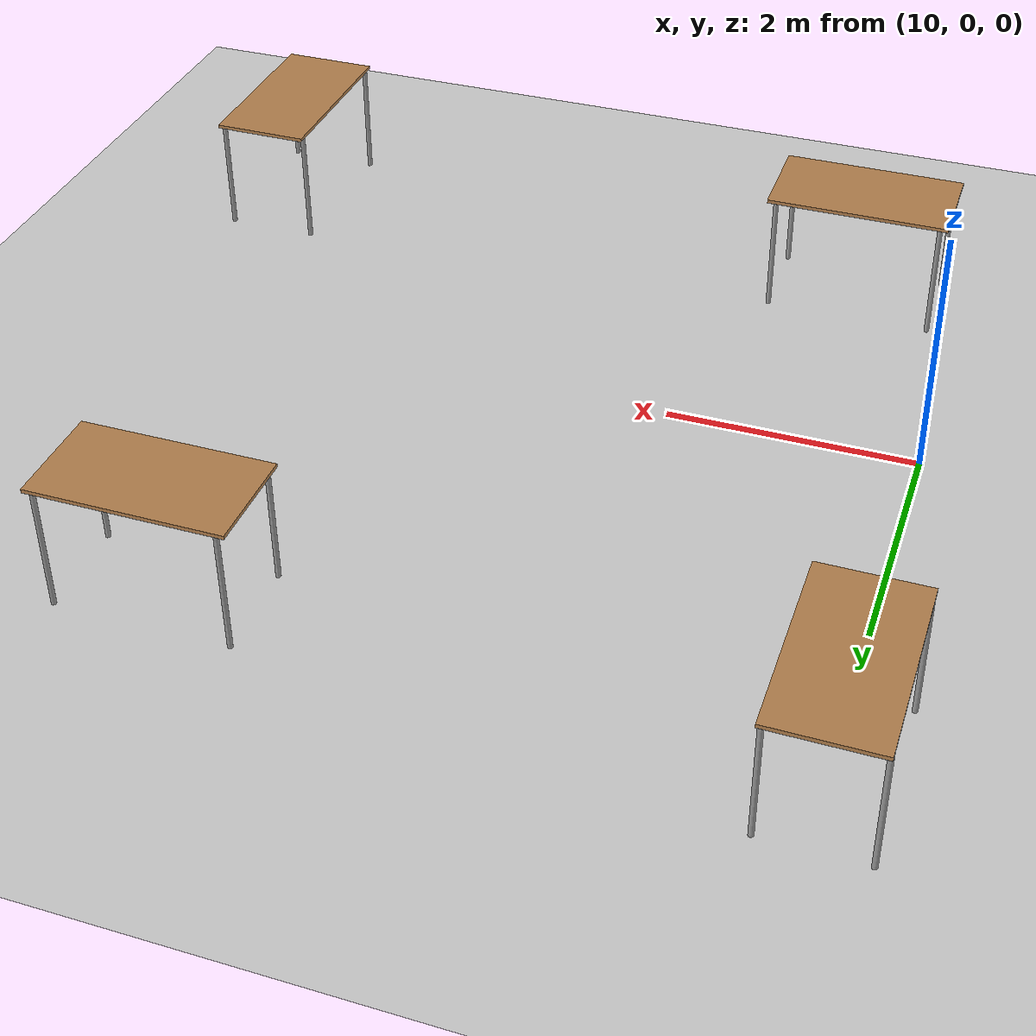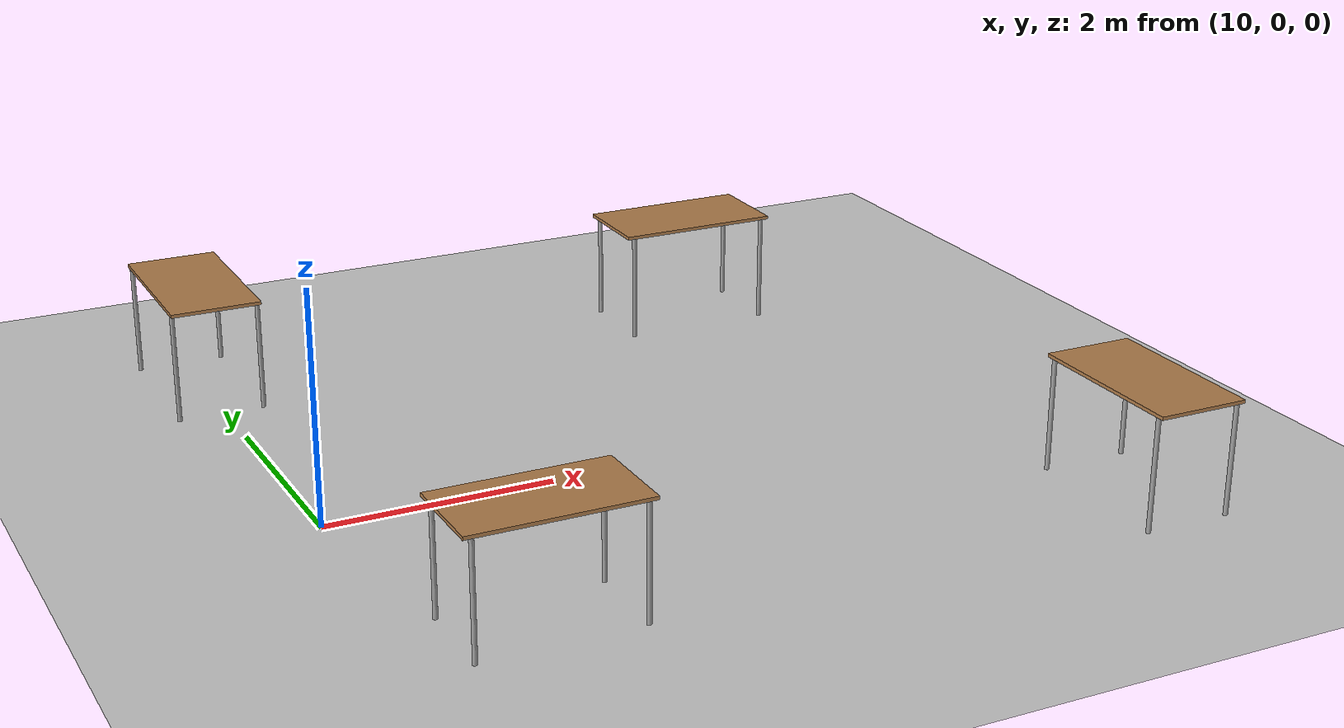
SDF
<sdf version="1.6">
 <world name="default">
  <model name="ground_plane">
   <static>1</static>
   <link name="link">
    <collision name="collision">
     <geometry><plane><normal>0 0 1</normal><size>100 100</size></plane></geometry>
     <surface>
      <contact><collide_bitmask>65535</collide_bitmask></contact>
      <friction><ode><mu>100</mu><mu2>50</mu2></ode></friction>
     </surface>
    </collision>
    <visual name="visual">
     <cast_shadows>0</cast_shadows>
     <geometry><plane><normal>0 0 1</normal><size>100 100</size></plane></geometry>
     <material>
      <script><uri>file://media/materials/scripts/gazebo.material</uri><name>Gazebo/Grey</name></script>
     </material>
    </visual>
   </link>
  </model>
  <model name="table_2">
   <static>1</static>
   <link name="link">
    <collision name="surface">
     <pose>0 0 1 0 -0 0</pose>
     <geometry><box><size>1.5 0.8 0.03</size></box></geometry>
     <surface><friction><ode><mu>0.6</mu><mu2>0.6</mu2></ode></friction></surface>
    </collision>
    <visual name="visual1">
     <pose>0 0 1 0 -0 0</pose>
     <geometry><box><size>1.5 0.8 0.03</size></box></geometry>
     <material>
      <script><uri>file://media/materials/scripts/gazebo.material</uri><name>Gazebo/Wood</name></script>
     </material>
    </visual>
    <collision name="front_left_leg">
     <pose>0.68 0.38 0.5 0 -0 0</pose>
     <geometry><cylinder><radius>0.02</radius><length>1</length></cylinder></geometry>
    </collision>
    <visual name="front_left_leg">
     <pose>0.68 0.38 0.5 0 -0 0</pose>
     <geometry><cylinder><radius>0.02</radius><length>1</length></cylinder></geometry>
     <material>
      <script><uri>file://media/materials/scripts/gazebo.material</uri><name>Gazebo/Grey</name></script>
     </material>
    </visual>
    <collision name="front_right_leg">
     <pose>0.68 -0.38 0.5 0 -0 0</pose>
     <geometry><cylinder><radius>0.02</radius><length>1</length></cylinder></geometry>
    </collision>
    <visual name="front_right_leg">
     <pose>0.68 -0.38 0.5 0 -0 0</pose>
     <geometry><cylinder><radius>0.02</radius><length>1</length></cylinder></geometry>
     <material>
      <script><uri>file://media/materials/scripts/gazebo.material</uri><name>Gazebo/Grey</name></script>
     </material>
    </visual>
    <collision name="back_right_leg">
     <pose>-0.68 -0.38 0.5 0 -0 0</pose>
     <geometry><cylinder><radius>0.02</radius><length>1</length></cylinder></geometry>
    </collision>
    <visual name="back_right_leg">
     <pose>-0.68 -0.38 0.5 0 -0 0</pose>
     <geometry><cylinder><radius>0.02</radius><length>1</length></cylinder></geometry>
     <material>
      <script><uri>file://media/materials/scripts/gazebo.material</uri><name>Gazebo/Grey</name></script>
     </material>
    </visual>
    <collision name="back_left_leg">
     <pose>-0.68 0.38 0.5 0 -0 0</pose>
     <geometry><cylinder><radius>0.02</radius><length>1</length></cylinder></geometry>
    </collision>
    <visual name="back_left_leg">
     <pose>-0.68 0.38 0.5 0 -0 0</pose>
     <geometry><cylinder><radius>0.02</radius><length>1</length></cylinder></geometry>
     <material>
      <script><uri>file://media/materials/scripts/gazebo.material</uri><name>Gazebo/Grey</name></script>
     </material>
    </visual>
   </link>
   <pose>10.9334 -2.20612 0 0 -0 0</pose>
  </model>
  <model name="table_3">
   <static>1</static>
   <link name="link">
    <collision name="surface">
     <pose>0 0 1 0 -0 0</pose>
     <geometry><box><size>1.5 0.8 0.03</size></box></geometry>
     <surface><friction><ode><mu>0.6</mu><mu2>0.6</mu2></ode></friction></surface>
    </collision>
    <visual name="visual1">
     <pose>0 0 1 0 -0 0</pose>
     <geometry><box><size>1.5 0.8 0.03</size></box></geometry>
     <material>
      <script><uri>file://media/materials/scripts/gazebo.material</uri><name>Gazebo/Wood</name></script>
     </material>
    </visual>
    <collision name="front_left_leg">
     <pose>0.68 0.38 0.5 0 -0 0</pose>
     <geometry><cylinder><radius>0.02</radius><length>1</length></cylinder></geometry>
    </collision>
    <visual name="front_left_leg">
     <pose>0.68 0.38 0.5 0 -0 0</pose>
     <geometry><cylinder><radius>0.02</radius><length>1</length></cylinder></geometry>
     <material>
      <script><uri>file://media/materials/scripts/gazebo.material</uri><name>Gazebo/Grey</name></script>
     </material>
    </visual>
    <collision name="front_right_leg">
     <pose>0.68 -0.38 0.5 0 -0 0</pose>
     <geometry><cylinder><radius>0.02</radius><length>1</length></cylinder></geometry>
    </collision>
    <visual name="front_right_leg">
     <pose>0.68 -0.38 0.5 0 -0 0</pose>
     <geometry><cylinder><radius>0.02</radius><length>1</length></cylinder></geometry>
     <material>
      <script><uri>file://media/materials/scripts/gazebo.material</uri><name>Gazebo/Grey</name></script>
     </material>
    </visual>
    <collision name="back_right_leg">
     <pose>-0.68 -0.38 0.5 0 -0 0</pose>
     <geometry><cylinder><radius>0.02</radius><length>1</length></cylinder></geometry>
    </collision>
    <visual name="back_right_leg">
     <pose>-0.68 -0.38 0.5 0 -0 0</pose>
     <geometry><cylinder><radius>0.02</radius><length>1</length></cylinder></geometry>
     <material>
      <script><uri>file://media/materials/scripts/gazebo.material</uri><name>Gazebo/Grey</name></script>
     </material>
    </visual>
    <collision name="back_left_leg">
     <pose>-0.68 0.38 0.5 0 -0 0</pose>
     <geometry><cylinder><radius>0.02</radius><length>1</length></cylinder></geometry>
    </collision>
    <visual name="back_left_leg">
     <pose>-0.68 0.38 0.5 0 -0 0</pose>
     <geometry><cylinder><radius>0.02</radius><length>1</length></cylinder></geometry>
     <material>
      <script><uri>file://media/materials/scripts/gazebo.material</uri><name>Gazebo/Grey</name></script>
     </material>
    </visual>
   </link>
   <pose>14.7616 3.11764 0 0 -0 0</pose>
  </model>
  <model name="table_clone_3">
   <static>1</static>
   <link name="link">
    <collision name="surface">
     <pose>0 0 1 0 -0 0</pose>
     <geometry><box><size>1.5 0.8 0.03</size></box></geometry>
     <surface><friction><ode><mu>0.6</mu><mu2>0.6</mu2></ode></friction></surface>
    </collision>
    <visual name="visual1">
     <pose>0 0 1 0 -0 0</pose>
     <geometry><box><size>1.5 0.8 0.03</size></box></geometry>
     <material>
      <script><uri>file://media/materials/scripts/gazebo.material</uri><name>Gazebo/Wood</name></script>
     </material>
    </visual>
    <collision name="front_left_leg">
     <pose>0.68 0.38 0.5 0 -0 0</pose>
     <geometry><cylinder><radius>0.02</radius><length>1</length></cylinder></geometry>
    </collision>
    <visual name="front_left_leg">
     <pose>0.68 0.38 0.5 0 -0 0</pose>
     <geometry><cylinder><radius>0.02</radius><length>1</length></cylinder></geometry>
     <material>
      <script><uri>file://media/materials/scripts/gazebo.material</uri><name>Gazebo/Grey</name></script>
     </material>
    </visual>
    <collision name="front_right_leg">
     <pose>0.68 -0.38 0.5 0 -0 0</pose>
     <geometry><cylinder><radius>0.02</radius><length>1</length></cylinder></geometry>
    </collision>
    <visual name="front_right_leg">
     <pose>0.68 -0.38 0.5 0 -0 0</pose>
     <geometry><cylinder><radius>0.02</radius><length>1</length></cylinder></geometry>
     <material>
      <script><uri>file://media/materials/scripts/gazebo.material</uri><name>Gazebo/Grey</name></script>
     </material>
    </visual>
    <collision name="back_right_leg">
     <pose>-0.68 -0.38 0.5 0 -0 0</pose>
     <geometry><cylinder><radius>0.02</radius><length>1</length></cylinder></geometry>
    </collision>
    <visual name="back_right_leg">
     <pose>-0.68 -0.38 0.5 0 -0 0</pose>
     <geometry><cylinder><radius>0.02</radius><length>1</length></cylinder></geometry>
     <material>
      <script><uri>file://media/materials/scripts/gazebo.material</uri><name>Gazebo/Grey</name></script>
     </material>
    </visual>
    <collision name="back_left_leg">
     <pose>-0.68 0.38 0.5 0 -0 0</pose>
     <geometry><cylinder><radius>0.02</radius><length>1</length></cylinder></geometry>
    </collision>
    <visual name="back_left_leg">
     <pose>-0.68 0.38 0.5 0 -0 0</pose>
     <geometry><cylinder><radius>0.02</radius><length>1</length></cylinder></geometry>
     <material>
      <script><uri>file://media/materials/scripts/gazebo.material</uri><name>Gazebo/Grey</name></script>
     </material>
    </visual>
   </link>
   <pose>16.1844 -2.27163 0 0 0 -1.57545</pose>
  </model>
  <model name="table_clone_4">
   <static>1</static>
   <link name="link">
    <collision name="surface">
     <pose>0 0 1 0 -0 0</pose>
     <geometry><box><size>1.5 0.8 0.03</size></box></geometry>
     <surface><friction><ode><mu>0.6</mu><mu2>0.6</mu2></ode></friction></surface>
    </collision>
    <visual name="visual1">
     <pose>0 0 1 0 -0 0</pose>
     <geometry><box><size>1.5 0.8 0.03</size></box></geometry>
     <material>
      <script><uri>file://media/materials/scripts/gazebo.material</uri><name>Gazebo/Wood</name></script>
     </material>
    </visual>
    <collision name="front_left_leg">
     <pose>0.68 0.38 0.5 0 -0 0</pose>
     <geometry><cylinder><radius>0.02</radius><length>1</length></cylinder></geometry>
    </collision>
    <visual name="front_left_leg">
     <pose>0.68 0.38 0.5 0 -0 0</pose>
     <geometry><cylinder><radius>0.02</radius><length>1</length></cylinder></geometry>
     <material>
      <script><uri>file://media/materials/scripts/gazebo.material</uri><name>Gazebo/Grey</name></script>
     </material>
    </visual>
    <collision name="front_right_leg">
     <pose>0.68 -0.38 0.5 0 -0 0</pose>
     <geometry><cylinder><radius>0.02</radius><length>1</length></cylinder></geometry>
    </collision>
    <visual name="front_right_leg">
     <pose>0.68 -0.38 0.5 0 -0 0</pose>
     <geometry><cylinder><radius>0.02</radius><length>1</length></cylinder></geometry>
     <material>
      <script><uri>file://media/materials/scripts/gazebo.material</uri><name>Gazebo/Grey</name></script>
     </material>
    </visual>
    <collision name="back_right_leg">
     <pose>-0.68 -0.38 0.5 0 -0 0</pose>
     <geometry><cylinder><radius>0.02</radius><length>1</length></cylinder></geometry>
    </collision>
    <visual name="back_right_leg">
     <pose>-0.68 -0.38 0.5 0 -0 0</pose>
     <geometry><cylinder><radius>0.02</radius><length>1</length></cylinder></geometry>
     <material>
      <script><uri>file://media/materials/scripts/gazebo.material</uri><name>Gazebo/Grey</name></script>
     </material>
    </visual>
    <collision name="back_left_leg">
     <pose>-0.68 0.38 0.5 0 -0 0</pose>
     <geometry><cylinder><radius>0.02</radius><length>1</length></cylinder></geometry>
    </collision>
    <visual name="back_left_leg">
     <pose>-0.68 0.38 0.5 0 -0 0</pose>
     <geometry><cylinder><radius>0.02</radius><length>1</length></cylinder></geometry>
     <material>
      <script><uri>file://media/materials/scripts/gazebo.material</uri><name>Gazebo/Grey</name></script>
     </material>
    </visual>
   </link>
   <pose>9.96545 3.28272 0 0 0 -1.57545</pose>
  </model>
 </world>
</sdf>
